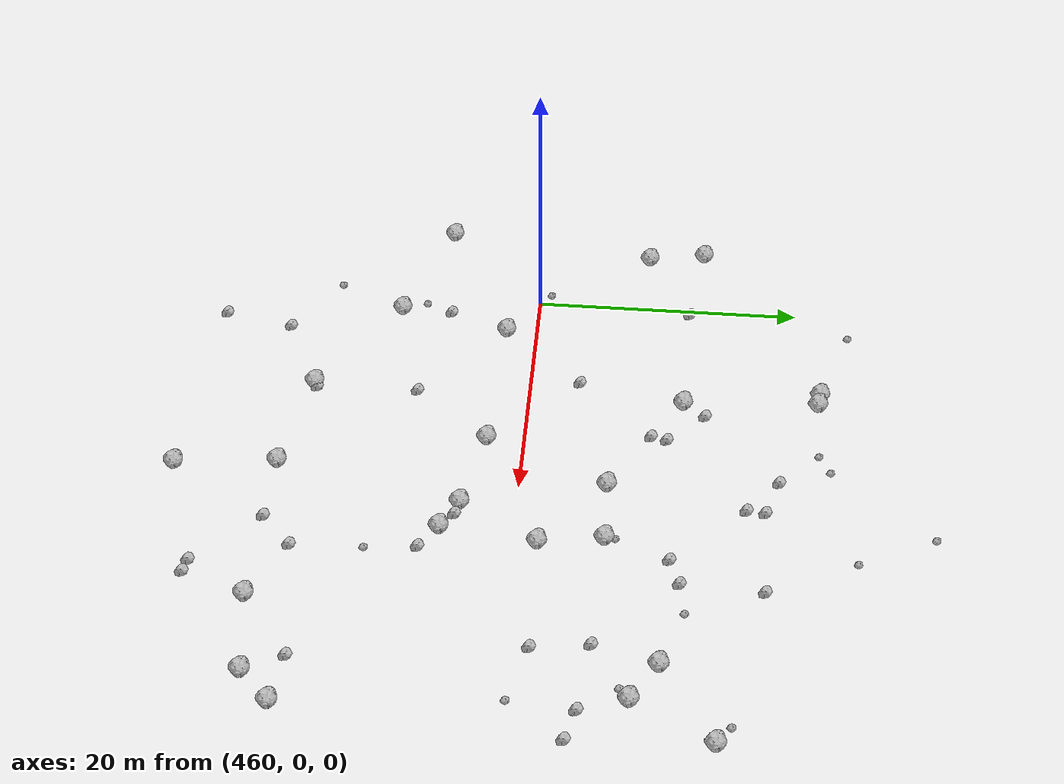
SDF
<sdf version="1.6">
 <world name="default">
  <include><uri>model://sun</uri></include>
  <model name="rock1_12_4">
   <include><uri>model://rock1</uri><pose>453.4904705337428 12.66664831993058 0.5 0 0 0</pose></include>
  </model>
  <model name="rock1_12_5">
   <include><uri>model://rock1</uri><pose>502.1519765211296 14.707805484039028 0.5 0 0 0</pose></include>
  </model>
  <model name="rock1_12_6">
   <include><uri>model://rock1</uri><pose>454.2171626021848 8.34638964227711 0.5 0 0 0</pose></include>
  </model>
  <model name="rock1_12_7">
   <include><uri>model://rock1</uri><pose>479.74540755361573 -25.301841515212033 0.5 0 0 0</pose></include>
  </model>
  <model name="rock1_12_8">
   <include><uri>model://rock1</uri><pose>470.6840478588125 11.55252648350902 0.5 0 0 0</pose></include>
  </model>
  <model name="rock1_12_9">
   <include><uri>model://rock1</uri><pose>479.5688702391225 6.340256325641903 0.5 0 0 0</pose></include>
  </model>
  <model name="rock1_12_10">
   <include><uri>model://rock1</uri><pose>482.10398524664663 -4.08597609737096 0.5 0 0 0</pose></include>
  </model>
  <model name="rock1_12_11">
   <include><uri>model://rock1</uri><pose>469.0262197602345 21.7905752019649 0.5 0 0 0</pose></include>
  </model>
  <model name="rock1_12_12">
   <include><uri>model://rock1</uri><pose>484.60251069772914 -5.301135701357207 0.5 0 0 0</pose></include>
  </model>
  <model name="rock1_12_13">
   <include><uri>model://rock1</uri><pose>470.50257212525906 -16.332468886036963 0.5 0 0 0</pose></include>
  </model>
  <model name="rock1_12_14">
   <include><uri>model://rock1</uri><pose>461.62521590673117 -10.734136881851569 0.5 0 0 0</pose></include>
  </model>
  <model name="rock1_12_15">
   <include><uri>model://rock1</uri><pose>452.345280286663 -7.61916035307404 0.5 0 0 0</pose></include>
  </model>
  <model name="rock1_12_16">
   <include><uri>model://rock1</uri><pose>495.8839319196567 10.759905318656173 0.5 0 0 0</pose></include>
  </model>
  <model name="rock1_12_17">
   <include><uri>model://rock1</uri><pose>484.7706361022638 6.466217128991161 0.5 0 0 0</pose></include>
  </model>
  <model name="rock1_12_18">
   <include><uri>model://rock1</uri><pose>463.5798368667336 -2.3728152706476635 0.5 0 0 0</pose></include>
  </model>
  <model name="rock1_12_19">
   <include><uri>model://rock1</uri><pose>491.9371363632664 -17.93952243773327 0.5 0 0 0</pose></include>
  </model>
  <model name="rock1_12_20">
   <include><uri>model://rock1</uri><pose>485.482765953932 1.7550116329644716 0.5 0 0 0</pose></include>
  </model>
  <model name="rock1_12_21">
   <include><uri>model://rock1</uri><pose>498.5337136829682 -17.022371978775205 0.5 0 0 0</pose></include>
  </model>
  <model name="rock1_12_22">
   <include><uri>model://rock1</uri><pose>498.9896097407828 8.907794124817578 0.5 0 0 0</pose></include>
  </model>
  <model name="rock1_12_23">
   <include><uri>model://rock1</uri><pose>470.1136851368682 21.631336806278888 0.5 0 0 0</pose></include>
  </model>
  <model name="rock1_12_24">
   <include><uri>model://rock1</uri><pose>475.4784326132445 -2.791787961724303 0.5 0 0 0</pose></include>
  </model>
  <model name="rock1_12_25">
   <include><uri>model://rock1</uri><pose>500.9617551865132 -14.76099965950903 0.5 0 0 0</pose></include>
  </model>
  <model name="rock1_12_26">
   <include><uri>model://rock1</uri><pose>479.02716352866423 -17.800171936206112 0.5 0 0 0</pose></include>
  </model>
  <model name="rock2_12_0">
   <include><uri>model://rock2</uri><pose>474.36466575047353 9.320734035906021 0.3 0 0 0</pose></include>
  </model>
  <model name="rock2_12_1">
   <include><uri>model://rock2</uri><pose>494.49345330629467 6.169845818393249 0.3 0 0 0</pose></include>
  </model>
  <model name="rock2_12_2">
   <include><uri>model://rock2</uri><pose>464.30183760009567 -19.12397978638776 0.3 0 0 0</pose></include>
  </model>
  <model name="rock2_12_3">
   <include><uri>model://rock2</uri><pose>502.5622000156608 4.902756968853218 0.3 0 0 0</pose></include>
  </model>
  <model name="rock2_12_4">
   <include><uri>model://rock2</uri><pose>474.63663148967396 10.49668792981494 0.3 0 0 0</pose></include>
  </model>
  <model name="rock2_12_5">
   <include><uri>model://rock2</uri><pose>470.77433670192806 -8.44859421803476 0.3 0 0 0</pose></include>
  </model>
  <model name="rock2_12_6">
   <include><uri>model://rock2</uri><pose>488.95532598795637 17.840125235053307 0.3 0 0 0</pose></include>
  </model>
  <model name="rock2_12_7">
   <include><uri>model://rock2</uri><pose>488.62310699738407 11.908983546344416 0.3 0 0 0</pose></include>
  </model>
  <model name="rock2_12_8">
   <include><uri>model://rock2</uri><pose>490.1488810425483 -22.590166987035545 0.3 0 0 0</pose></include>
  </model>
  <model name="rock2_12_9">
   <include><uri>model://rock2</uri><pose>500.09471138957184 5.552062618138628 0.3 0 0 0</pose></include>
  </model>
  <model name="rock2_12_10">
   <include><uri>model://rock2</uri><pose>460.6114395150897 11.750125967822946 0.3 0 0 0</pose></include>
  </model>
  <model name="rock2_12_11">
   <include><uri>model://rock2</uri><pose>461.7814607514022 -6.831969235877644 0.3 0 0 0</pose></include>
  </model>
  <model name="rock2_12_12">
   <include><uri>model://rock2</uri><pose>487.0634382884741 -15.586273058258053 0.3 0 0 0</pose></include>
  </model>
  <model name="rock2_12_13">
   <include><uri>model://rock2</uri><pose>483.23593883505475 -4.315930773060359 0.3 0 0 0</pose></include>
  </model>
  <model name="rock2_12_14">
   <include><uri>model://rock2</uri><pose>470.929991796972 -16.067745280311968 0.3 0 0 0</pose></include>
  </model>
  <model name="rock2_12_15">
   <include><uri>model://rock2</uri><pose>481.32840737511435 16.45158187594162 0.3 0 0 0</pose></include>
  </model>
  <model name="rock2_12_16">
   <include><uri>model://rock2</uri><pose>497.0018150385431 -14.17965913920921 0.3 0 0 0</pose></include>
  </model>
  <model name="rock2_12_17">
   <include><uri>model://rock2</uri><pose>478.40489417934685 18.76634144765474 0.3 0 0 0</pose></include>
  </model>
  <model name="rock2_12_18">
   <include><uri>model://rock2</uri><pose>471.91852042882124 13.235050682335569 0.3 0 0 0</pose></include>
  </model>
  <model name="rock2_12_19">
   <include><uri>model://rock2</uri><pose>484.47130562129064 -17.86446285204888 0.3 0 0 0</pose></include>
  </model>
  <model name="rock2_12_20">
   <include><uri>model://rock2</uri><pose>469.0248363518037 3.704229038008897 0.3 0 0 0</pose></include>
  </model>
  <model name="rock2_12_21">
   <include><uri>model://rock2</uri><pose>481.46313237793913 17.79438476038076 0.3 0 0 0</pose></include>
  </model>
  <model name="rock2_12_22">
   <include><uri>model://rock2</uri><pose>486.4698408346231 11.134937329763957 0.3 0 0 0</pose></include>
  </model>
  <model name="rock2_12_23">
   <include><uri>model://rock2</uri><pose>486.5343249864577 -6.5565496827105 0.3 0 0 0</pose></include>
  </model>
  <model name="rock2_12_24">
   <include><uri>model://rock2</uri><pose>463.16269448023945 -24.34326028080875 0.3 0 0 0</pose></include>
  </model>
  <model name="rock2_12_25">
   <include><uri>model://rock2</uri><pose>495.03375800283317 2.02009786585311 0.3 0 0 0</pose></include>
  </model>
  <model name="rock2_12_26">
   <include><uri>model://rock2</uri><pose>489.0519735896199 -22.37772051105991 0.3 0 0 0</pose></include>
  </model>
  <model name="rock3_12_0">
   <include><uri>model://rock3</uri><pose>491.23508351272204 12.327997963157081 0.2 0 0 0</pose></include>
  </model>
  <model name="rock3_12_1">
   <include><uri>model://rock3</uri><pose>486.8530928182372 -10.370511940416495 0.2 0 0 0</pose></include>
  </model>
  <model name="rock3_12_2">
   <include><uri>model://rock3</uri><pose>484.6722676134909 7.229026799905 0.2 0 0 0</pose></include>
  </model>
  <model name="rock3_12_3">
   <include><uri>model://rock3</uri><pose>462.3458633704407 23.964102983358572 0.2 0 0 0</pose></include>
  </model>
  <model name="rock3_12_4">
   <include><uri>model://rock3</uri><pose>475.41270914083486 21.642100826315854 0.2 0 0 0</pose></include>
  </model>
  <model name="rock3_12_5">
   <include><uri>model://rock3</uri><pose>485.7832312070293 24.296877504908437 0.2 0 0 0</pose></include>
  </model>
  <model name="rock3_12_6">
   <include><uri>model://rock3</uri><pose>460.78215496143457 -8.89223673149155 0.2 0 0 0</pose></include>
  </model>
  <model name="rock3_12_7">
   <include><uri>model://rock3</uri><pose>476.9990998867506 22.482550445604772 0.2 0 0 0</pose></include>
  </model>
  <model name="rock3_12_8">
   <include><uri>model://rock3</uri><pose>459.06463073398726 0.7844062450977738 0.2 0 0 0</pose></include>
  </model>
  <model name="rock3_12_9">
   <include><uri>model://rock3</uri><pose>459.08395586478065 -15.825178404701095 0.2 0 0 0</pose></include>
  </model>
  <model name="rock3_12_10">
   <include><uri>model://rock3</uri><pose>483.0963003926128 29.832664991657495 0.2 0 0 0</pose></include>
  </model>
  <model name="rock3_12_11">
   <include><uri>model://rock3</uri><pose>499.6039444713664 0.7999444873465578 0.2 0 0 0</pose></include>
  </model>
  <model name="rock3_12_12">
   <include><uri>model://rock3</uri><pose>500.6810369148971 15.708928314679767 0.2 0 0 0</pose></include>
  </model>
  <model name="rock3_12_13">
   <include><uri>model://rock3</uri><pose>498.0518695348959 8.232915619609415 0.2 0 0 0</pose></include>
  </model>
 </world>
</sdf>
